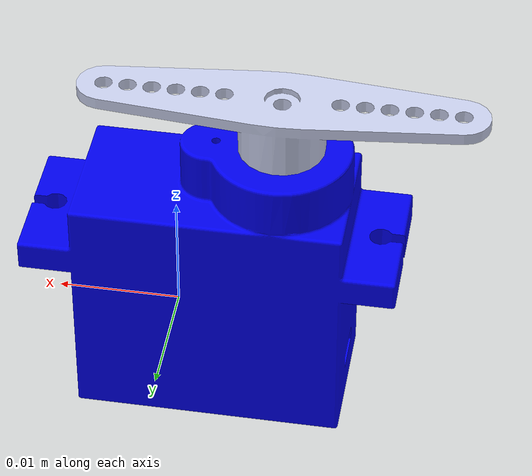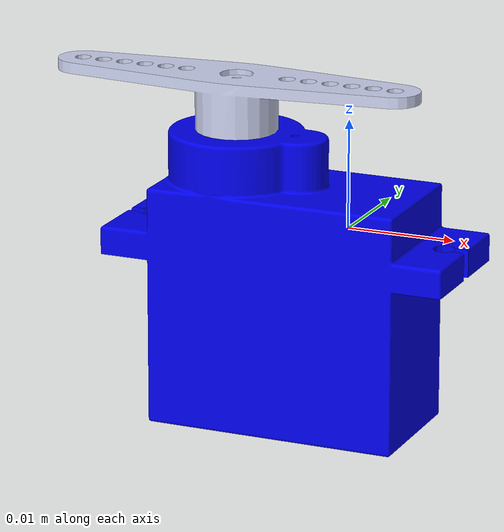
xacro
<?xml version="1.0" encoding="utf-8"?>
<robot name="servo_description" xmlns:xacro="http://www.ros.org/wiki/xacro">
  <link name="base_link">
    <inertial>
      <origin
        xyz="-0.00181669331950288 -0.00812663302689943 -0.00451550415802209"
        rpy="0 0 0" />
      <mass
        value="0.00197871129521283" />
      <inertia
        ixx="1.44758151007133E-07"
        ixy="3.08865608023859E-14"
        ixz="7.02460871171258E-09"
        iyy="2.36910306633922E-07"
        iyz="1.9793881858573E-13"
        izz="1.67168966673058E-07" />
    </inertial>
    <visual>
      <origin
        xyz="0 0 0"
        rpy="0 0 0" />
      <geometry>
        <mesh
          filename="package://servo_description/meshes/base_link.STL" />
      </geometry>
      <material
        name="">
        <color
          rgba="0.0 0.0 0.933333333333333 1" />
      </material>
    </visual>
    <collision>
      <origin
        xyz="0 0 0"
        rpy="0 0 0" />
      <geometry>
        <mesh
          filename="package://servo_description/meshes/base_link.STL" />
      </geometry>
    </collision>
  </link>

  <link name="link_01">
    <inertial>
      <origin
        xyz="6.93889390390723E-18 0.00532571920631412 7.80625564189563E-18"
        rpy="0 0 0" />
      <mass
        value="0.000549338745067411" />
      <inertia
        ixx="1.81880993094334E-08"
        ixy="-1.17667180124475E-23"
        ixz="-4.904876927657E-09"
        iyy="1.70698831784011E-08"
        iyz="-7.21652243954026E-24"
        izz="1.06840495719932E-08" />
    </inertial>
    <visual>
      <origin
        xyz="0 0 0"
        rpy="0 0 0" />
      <geometry>
        <mesh
          filename="package://servo_description/meshes/link_01.STL" />
      </geometry>
      <material
        name="">
        <color
          rgba="0.792156862745098 0.819607843137255 0.933333333333333 1" />
      </material>
    </visual>
    <collision>
      <origin
        xyz="0 0 0"
        rpy="0 0 0" />
      <geometry>
        <mesh
          filename="package://servo_description/meshes/link_01.STL" />
      </geometry>
    </collision>
  </link>

  <joint
    name="joint_01"
    type="revolute">
    <origin
      xyz="-0.00727514325122274 -0.00812663258989232 0.00591702989211944"
      rpy="1.5707963267949 0 -2.01915461393579" />
    <parent
      link="base_link" />
    <child
      link="link_01" />
    <axis
      xyz="0 1 0" />
    <limit
      lower="0"
      upper="3.14159265358979"
      effort="5"
      velocity="0.5"/>
  </joint>

</robot>
